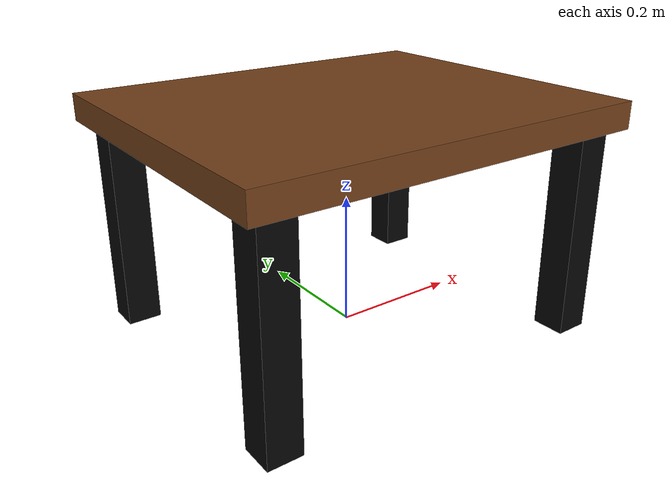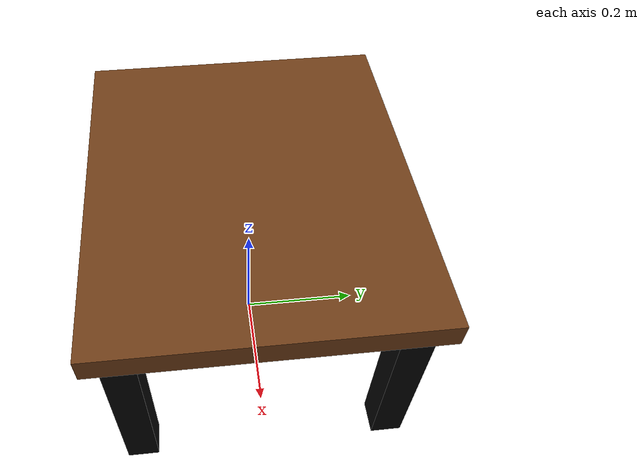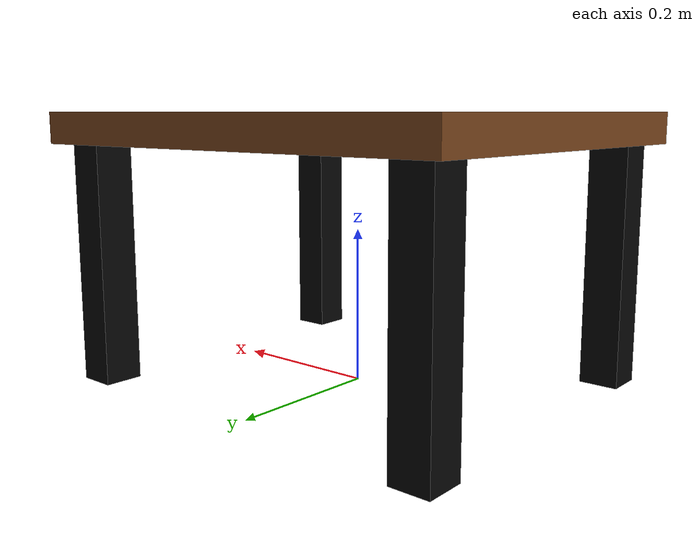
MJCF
<mujoco model="table">
  <compiler angle="radian"/>

  <default>
    <default class="table">
      <geom type="box" group="1" size="0.30 0.25 0.02" material="tabletop_wood"
      solimp="0.95 0.99 0.001" solref="0.01 1.0"/>
      <default class="leg">
        <geom size="0.025 0.025 0.155" material="leg_black"/>
      </default>
      <site size="0.001" rgba="0.5 0.5 0.5 0.3" group="4"/>
    </default>
  </default>

  <asset>
    <material name="tabletop_wood" rgba="0.45 0.25 0.10 1"/>
    <material name="leg_black" rgba="0.02 0.02 0.02 1"/>
  </asset>

  <worldbody>
    <body name="table" childclass="table">
      <geom name="tabletop" pos="0 0 0.33" friction="1.0 0.005 0.0001"/>
      <geom name="leg_fl" pos="-0.255 -0.205 0.155" class="leg"/>
      <geom name="leg_fr" pos="0.255 -0.205 0.155" class="leg"/>
      <geom name="leg_rl" pos="-0.255 0.205 0.155" class="leg"/>
      <geom name="leg_rr" pos="0.255 0.205 0.155" class="leg"/>
      <!-- Reference pose marker for placing objects -->
      <site name="topcenter" pos="0 0 0.351"/>
    </body>
  </worldbody>
</mujoco>
